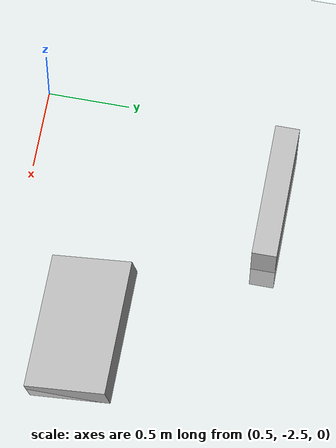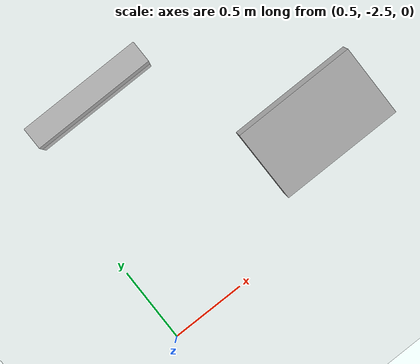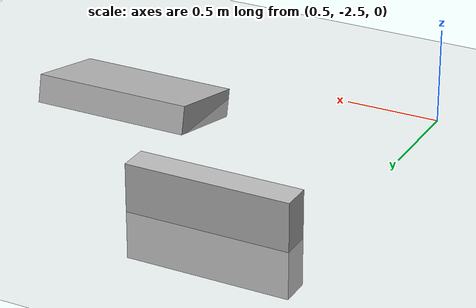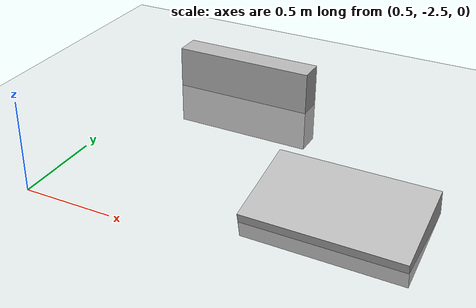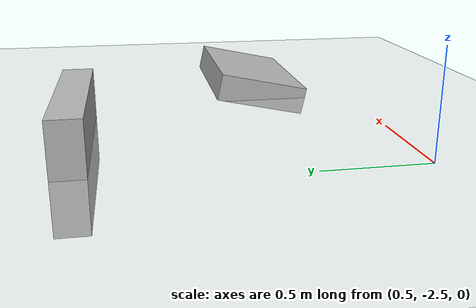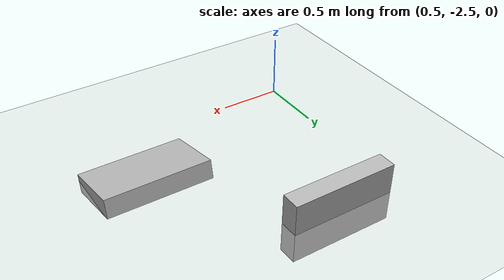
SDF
<?xml version="1.0"?>
<sdf version="1.6">
    <world name="default">
        <gui>
            <plugin name="keyboard" filename="libKeyboardGUIPlugin.so" />
        </gui>

        <include>
            <uri>model://sun</uri>
        </include>

        <include>
            <uri>model://ground_plane</uri>
        </include>

        <model name="box_obstacle">
            <static>true</static>
            <pose>2 -2 0.028 1.7821 0 0</pose>
            <link name="box">
                <collision name="box_collision">
                    <pose frame="">0 0 0 0 0 0</pose>
                    <geometry>
                        <box>
                            <size>0.85 0.15 0.50</size>
                        </box>
                    </geometry>
                    <surface>
                        <friction>
                            <ode>
                                <mu>1</mu>
                            </ode>
                        </friction>
                    </surface>
                </collision>
                <visual name="box_visual">
                    <pose frame="">0 0 0 0 0 0</pose>
                    <geometry>
                        <box>
                            <size>0.85 0.15 0.50</size>
                        </box>
                    </geometry>
                </visual>
            </link>
        </model>

        <model name="box2_obstacle">
            <static>true</static>
            <pose>1 -1 0 0 0 0</pose>
            <link name="box">
                <collision name="box_collision">
                    <pose frame="">0 0 0 0 0 0</pose>
                    <geometry>
                        <box>
                            <size>1 1 1</size>
                        </box>
                    </geometry>
                    <surface>
                        <friction>
                            <ode>
                                <mu>1</mu>
                            </ode>
                        </friction>
                    </surface>
                </collision>
                <visual name="box_visual">
                    <pose frame="">0 0 0 0 0 0</pose>
                    <geometry>
                        <box>
                            <size>0.85 0.15 0.50</size>
                        </box>
                    </geometry>
                </visual>
                <inertial>
                    <origin xyz="1.0 -1.0 0.0" rpy="0.0 0.0 0.0"/>
                    <mass value="50.0"/>
                    <inertia ixx="0.0" ixy="0.0" ixz="0.0" iyy="0.0" iyz="0.0" izz="0.0"/>
                </inertial>

            </link>
        </model>

    </world>
</sdf>
